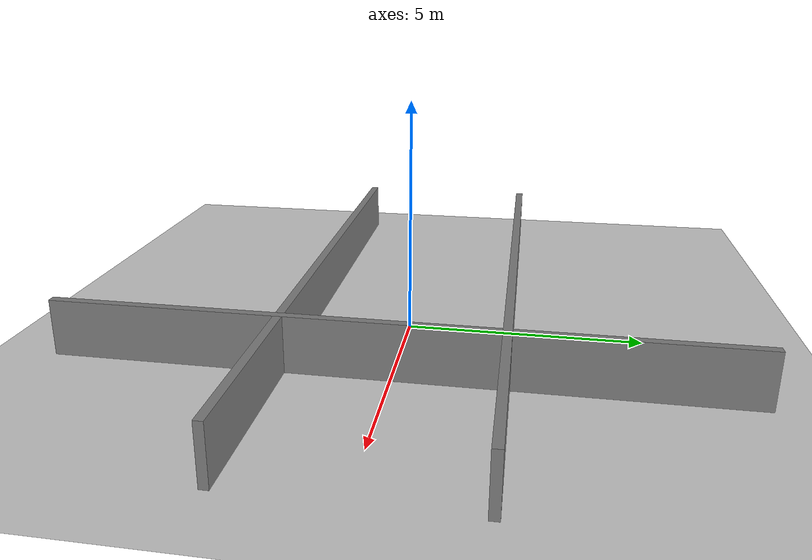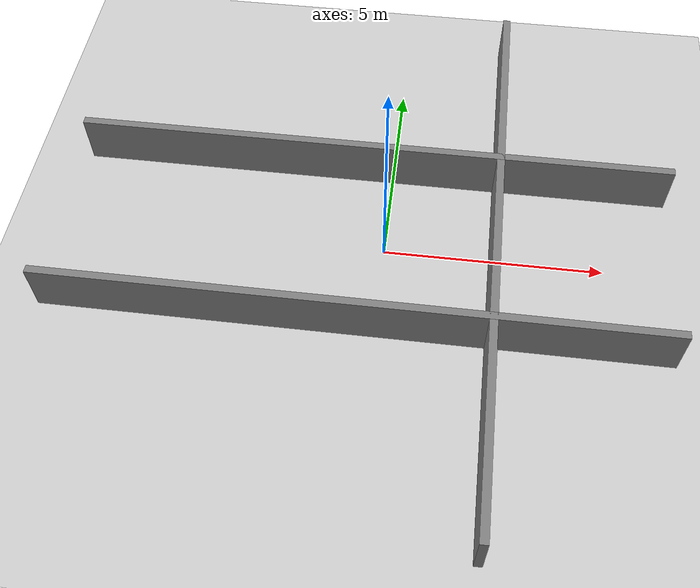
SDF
<?xml version="1.0"?>
<sdf version="1.6"><world name="local_minimum_trap"><physics name="default_physics" type="ode"><max_step_size>0.001</max_step_size><real_time_update_rate>1000</real_time_update_rate></physics><plugin name="gazebo_ros_state" filename="libgazebo_ros_state.so"><update_rate>50</update_rate></plugin><include><uri>model://ground_plane</uri></include><include><uri>model://sun</uri></include>
<include><name>obstacle_trap_back</name><uri>model://r680_wall_long</uri><pose>2.5 0 0.6 0 0 1.57079632679</pose></include><include><name>obstacle_trap_left</name><uri>model://r680_wall_long</uri><pose>-0.5 2.2 0.6 0 0 0</pose></include><include><name>obstacle_trap_right</name><uri>model://r680_wall_long</uri><pose>-0.5 -2.2 0.6 0 0 0</pose></include></world></sdf>

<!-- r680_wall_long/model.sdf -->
<sdf version="1.6"><model name="r680_wall_long"><static>true</static><link name="body"><collision name="collision"><geometry><box><size>14 0.18 1.2</size></box></geometry></collision><visual name="visual"><geometry><box><size>14 0.18 1.2</size></box></geometry><material><ambient>0.35 0.35 0.35 1</ambient><diffuse>0.5 0.5 0.5 1</diffuse></material></visual></link></model></sdf>
